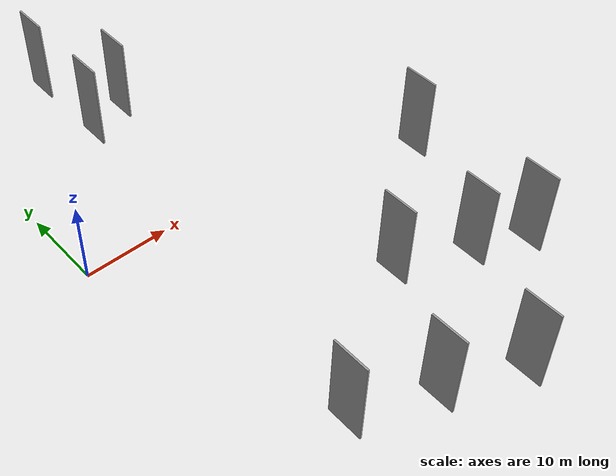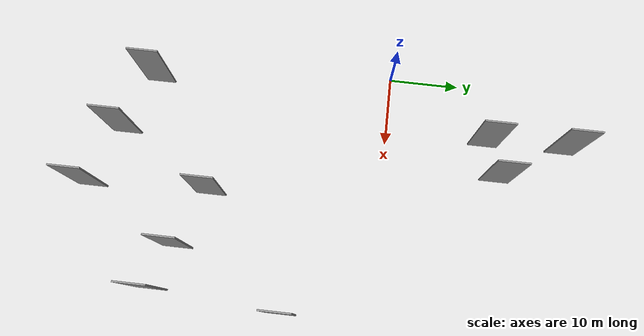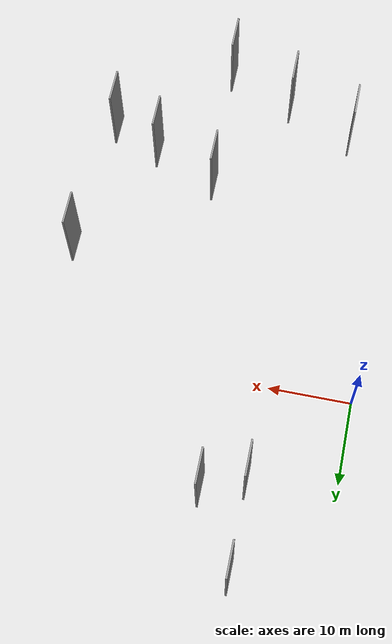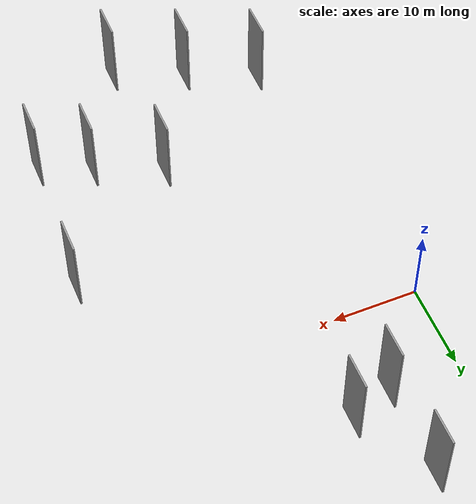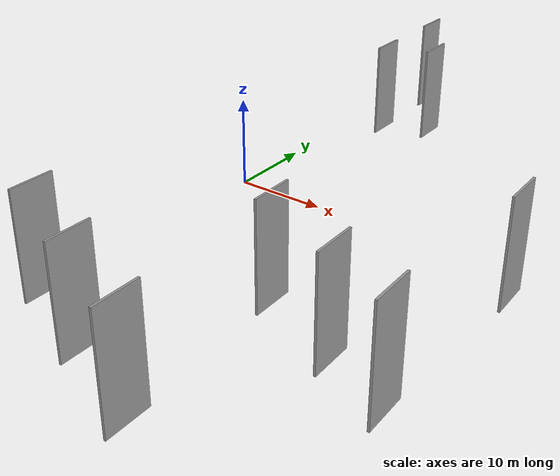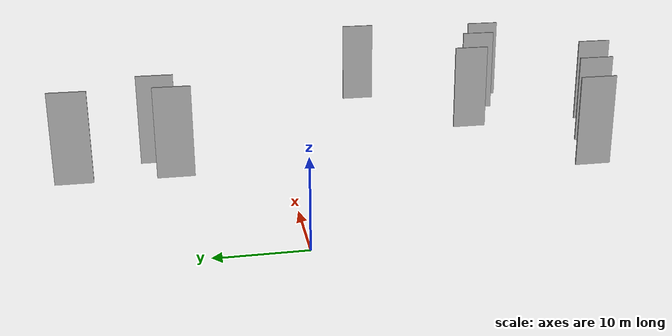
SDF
<sdf version="1.6">
 <world name="default">
  <scene>
   <sky><clouds><speed>12</speed></clouds></sky>
   <ambient>0.4 0.4 0.4 1</ambient>
   <background>0.7 0.7 0.7 1</background>
   <shadows>1</shadows>
  </scene>
  <gravity>0 0 -9.8066</gravity>
  <magnetic_field>6e-06 2.3e-05 -4.2e-05</magnetic_field>
  <physics default="0" name="default_physics" type="ode">
   <ode>
    <solver>
     <type>quick</type>
     <iters>10</iters>
     <sor>1.0</sor>
     <use_dynamic_moi_rescaling>0</use_dynamic_moi_rescaling>
    </solver>
    <constraints>
     <cfm>0</cfm>
     <erp>0.2</erp>
     <contact_max_correcting_vel>100</contact_max_correcting_vel>
     <contact_surface_layer>0.001</contact_surface_layer>
    </constraints>
   </ode>
   <max_step_size>0.004</max_step_size>
   <real_time_factor>1</real_time_factor>
   <real_time_update_rate>250</real_time_update_rate>
  </physics>
  <light name="sun" type="directional">
   <pose>0 0 10 0 0 0</pose>
   <diffuse>0.8 0.8 0.8 1</diffuse>
   <specular>0.2 0.2 0.2 1</specular>
   <attenuation>
    <range>1000</range>
    <constant>0.9</constant>
    <linear>0.01</linear>
    <quadratic>0.001</quadratic>
   </attenuation>
   <direction>-0.5 0.1 -0.9</direction>
  </light>
  <model name="grey_wall_1">
   <static>1</static>
   <pose>10.2491 13.0033 5.0 0.000000 0.000000 1.570796</pose>
   <link name="link">
    <pose>0 0 5.00 0 0 0</pose>
    <collision name="collision"><geometry><box><size>4.00 0.2 10.00</size></box></geometry></collision>
    <visual name="visual">
     <cast_shadows>0</cast_shadows>
     <geometry><box><size>4.00 0.2 10.00</size></box></geometry>
     <material>
      <script>
       <uri>model://grey_wall/materials/scripts</uri>
       <uri>model://grey_wall/materials/textures</uri>
       <name>vrc/grey_wall</name>
      </script>
     </material>
    </visual>
   </link>
  </model>
  <model name="grey_wall_2">
   <static>1</static>
   <pose>34.4510 -28.6441 5.0 0.000000 0.000000 1.570796</pose>
   <link name="link">
    <pose>0 0 5.00 0 0 0</pose>
    <collision name="collision"><geometry><box><size>4.00 0.2 10.00</size></box></geometry></collision>
    <visual name="visual">
     <cast_shadows>0</cast_shadows>
     <geometry><box><size>4.00 0.2 10.00</size></box></geometry>
     <material>
      <script>
       <uri>model://grey_wall/materials/scripts</uri>
       <uri>model://grey_wall/materials/textures</uri>
       <name>vrc/grey_wall</name>
      </script>
     </material>
    </visual>
   </link>
  </model>
  <model name="grey_wall_3">
   <static>1</static>
   <pose>21.0937 -22.9470 5.0 0.000000 0.000000 1.570796</pose>
   <link name="link">
    <pose>0 0 5.00 0 0 0</pose>
    <collision name="collision"><geometry><box><size>4.00 0.2 10.00</size></box></geometry></collision>
    <visual name="visual">
     <cast_shadows>0</cast_shadows>
     <geometry><box><size>4.00 0.2 10.00</size></box></geometry>
     <material>
      <script>
       <uri>model://grey_wall/materials/scripts</uri>
       <uri>model://grey_wall/materials/textures</uri>
       <name>vrc/grey_wall</name>
      </script>
     </material>
    </visual>
   </link>
  </model>
  <model name="grey_wall_4">
   <static>1</static>
   <pose>15.1118 14.8205 5.0 0.000000 0.000000 1.570796</pose>
   <link name="link">
    <pose>0 0 5.00 0 0 0</pose>
    <collision name="collision"><geometry><box><size>4.00 0.2 10.00</size></box></geometry></collision>
    <visual name="visual">
     <cast_shadows>0</cast_shadows>
     <geometry><box><size>4.00 0.2 10.00</size></box></geometry>
     <material>
      <script>
       <uri>model://grey_wall/materials/scripts</uri>
       <uri>model://grey_wall/materials/textures</uri>
       <name>vrc/grey_wall</name>
      </script>
     </material>
    </visual>
   </link>
  </model>
  <model name="grey_wall_5">
   <static>1</static>
   <pose>35.7975 -11.6014 5.0 0.000000 0.000000 1.570796</pose>
   <link name="link">
    <pose>0 0 5.00 0 0 0</pose>
    <collision name="collision"><geometry><box><size>4.00 0.2 10.00</size></box></geometry></collision>
    <visual name="visual">
     <cast_shadows>0</cast_shadows>
     <geometry><box><size>4.00 0.2 10.00</size></box></geometry>
     <material>
      <script>
       <uri>model://grey_wall/materials/scripts</uri>
       <uri>model://grey_wall/materials/textures</uri>
       <name>vrc/grey_wall</name>
      </script>
     </material>
    </visual>
   </link>
  </model>
  <model name="grey_wall_6">
   <static>1</static>
   <pose>28.7012 -26.2364 5.0 0.000000 0.000000 1.570796</pose>
   <link name="link">
    <pose>0 0 5.00 0 0 0</pose>
    <collision name="collision"><geometry><box><size>4.00 0.2 10.00</size></box></geometry></collision>
    <visual name="visual">
     <cast_shadows>0</cast_shadows>
     <geometry><box><size>4.00 0.2 10.00</size></box></geometry>
     <material>
      <script>
       <uri>model://grey_wall/materials/scripts</uri>
       <uri>model://grey_wall/materials/textures</uri>
       <name>vrc/grey_wall</name>
      </script>
     </material>
    </visual>
   </link>
  </model>
  <model name="grey_wall_7">
   <static>1</static>
   <pose>13.6766 -35.7911 5.0 0.000000 0.000000 1.570796</pose>
   <link name="link">
    <pose>0 0 5.00 0 0 0</pose>
    <collision name="collision"><geometry><box><size>4.00 0.2 10.00</size></box></geometry></collision>
    <visual name="visual">
     <cast_shadows>0</cast_shadows>
     <geometry><box><size>4.00 0.2 10.00</size></box></geometry>
     <material>
      <script>
       <uri>model://grey_wall/materials/scripts</uri>
       <uri>model://grey_wall/materials/textures</uri>
       <name>vrc/grey_wall</name>
      </script>
     </material>
    </visual>
   </link>
  </model>
  <model name="grey_wall_8">
   <static>1</static>
   <pose>10.1595 23.5367 5.0 0.000000 0.000000 1.570796</pose>
   <link name="link">
    <pose>0 0 5.00 0 0 0</pose>
    <collision name="collision"><geometry><box><size>4.00 0.2 10.00</size></box></geometry></collision>
    <visual name="visual">
     <cast_shadows>0</cast_shadows>
     <geometry><box><size>4.00 0.2 10.00</size></box></geometry>
     <material>
      <script>
       <uri>model://grey_wall/materials/scripts</uri>
       <uri>model://grey_wall/materials/textures</uri>
       <name>vrc/grey_wall</name>
      </script>
     </material>
    </visual>
   </link>
  </model>
  <model name="grey_wall_9">
   <static>1</static>
   <pose>5.6848 -32.4509 5.0 0.000000 0.000000 1.570796</pose>
   <link name="link">
    <pose>0 0 5.00 0 0 0</pose>
    <collision name="collision"><geometry><box><size>4.00 0.2 10.00</size></box></geometry></collision>
    <visual name="visual">
     <cast_shadows>0</cast_shadows>
     <geometry><box><size>4.00 0.2 10.00</size></box></geometry>
     <material>
      <script>
       <uri>model://grey_wall/materials/scripts</uri>
       <uri>model://grey_wall/materials/textures</uri>
       <name>vrc/grey_wall</name>
      </script>
     </material>
    </visual>
   </link>
  </model>
  <model name="grey_wall_10">
   <static>1</static>
   <pose>21.6622 -39.0578 5.0 0.000000 0.000000 1.570796</pose>
   <link name="link">
    <pose>0 0 5.00 0 0 0</pose>
    <collision name="collision"><geometry><box><size>4.00 0.2 10.00</size></box></geometry></collision>
    <visual name="visual">
     <cast_shadows>0</cast_shadows>
     <geometry><box><size>4.00 0.2 10.00</size></box></geometry>
     <material>
      <script>
       <uri>model://grey_wall/materials/scripts</uri>
       <uri>model://grey_wall/materials/textures</uri>
       <name>vrc/grey_wall</name>
      </script>
     </material>
    </visual>
   </link>
  </model>
 </world>
</sdf>
